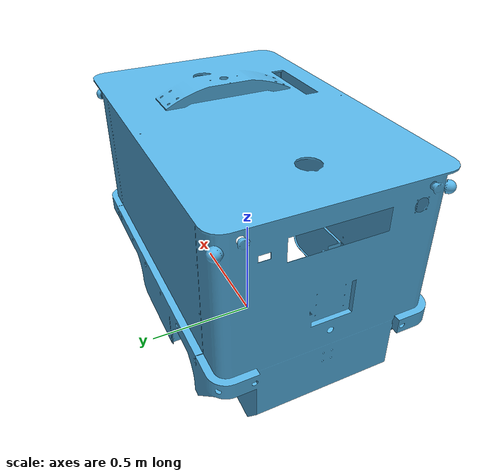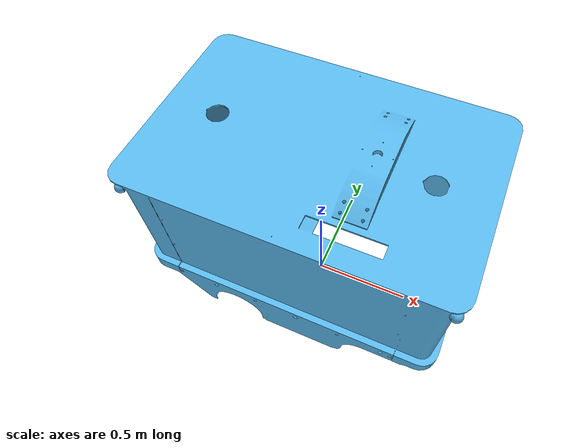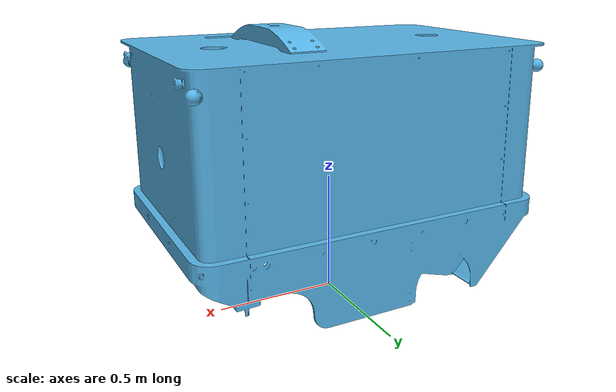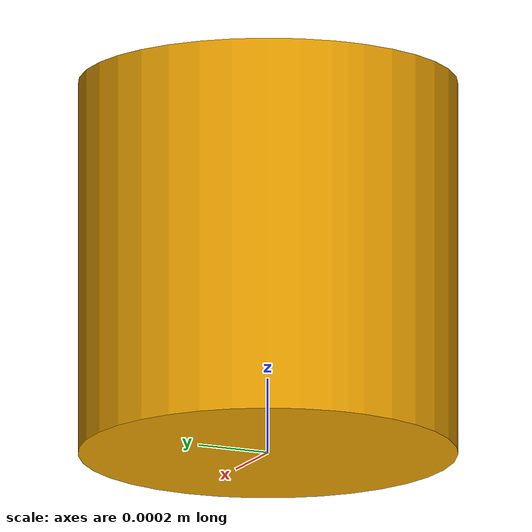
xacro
<?xml version="1.0" encoding="utf-8"?>
<robot xmlns:xacro="http://www.ros.org/wiki/xacro">
    <link name="base_footprint">
        <visual>
            <origin xyz="0 0 0" rpy="0 0 0" />
            <geometry>
                <mesh filename="package://cleaningrobot_description/meshes/base_footprint.STL" />
            </geometry>
            <xacro:color_material color="yellow"/>
        </visual>
        <collision>
            <origin xyz="0 0 0" rpy="0 0 0" />
            <geometry>
                <mesh filename="package://cleaningrobot_description/meshes/base_footprint.STL" />
            </geometry>
        </collision>
    </link>
    <link name="base_link">
        <inertial>
            <origin xyz="0 0 0.2541" rpy="0 0 0" />
            <mass value="24.9682" />
            <inertia ixx="1.4912" ixy="-0.0134" ixz="0.0072" iyy="2.6163" iyz="-0.0002" izz="3.5498" />
        </inertial>
        <visual>
            <origin xyz="0 0 0" rpy="0 0 0" />
            <geometry>
                <mesh filename="package://cleaningrobot_description/meshes/base_link.STL" />
            </geometry>
            <xacro:color_material color="white"/>

        </visual>
        <collision>
            <origin xyz="0 0 0" rpy="0 0 0" />
            <geometry>
                <mesh filename="package://cleaningrobot_description/meshes/base_link.STL" />
            </geometry>
        </collision>
    </link>
    <joint name="base_footprint2base_link" type="fixed">
        <origin xyz="0 0 0.53363" rpy="0 0 0" />
        <parent link="base_footprint" />
        <child link="base_link" />
        <axis xyz="0 0 0" />
    </joint>

    <!-- ultra sonar -->

    <link name="sonar1"></link>
  <joint
    name="baselink2sonar1"
    type="fixed">
    <origin
      xyz="0.7315 -0.156 -0.13812"
      rpy="-1.5708 0 -1.5708" />
    <parent
      link="base_link" />
    <child
      link="sonar1" />
    <axis
      xyz="0 0 0" />
  </joint>
  <link
    name="sonar2">
  </link>
  <joint
    name="baselink2sonar2"
    type="fixed">
    <origin
      xyz="0.489 -0.4765 -0.13812"
      rpy="-1.5708 0 3.1416" />
    <parent
      link="base_link" />
    <child
      link="sonar2" />
    <axis
      xyz="0 0 0" />
  </joint>
  <link
    name="sonar3">
  </link>
  <joint
    name="baselink_sonar3"
    type="fixed">
    <origin
      xyz="0.069 -0.4765 -0.13812"
      rpy="-1.5708 0 3.1416" />
    <parent
      link="base_link" />
    <child
      link="sonar3" />
    <axis
      xyz="0 0 0" />
  </joint>
  <link
    name="sonar4">
  </link>
  <joint
    name="baselink2sonar4"
    type="fixed">
    <origin
      xyz="-0.351 -0.4765 -0.13812"
      rpy="-1.5708 0 3.1416" />
    <parent
      link="base_link" />
    <child
      link="sonar4" />
    <axis
      xyz="0 0 0" />
  </joint>
  <link
    name="sonar5">
  </link>
  <joint
    name="baselink2sonar5"
    type="fixed">
    <origin
      xyz="-0.7315 -0.3225 -0.13812"
      rpy="-1.5708 0 1.5708" />
    <parent
      link="base_link" />
    <child
      link="sonar5" />
    <axis
      xyz="0 0 0" />
  </joint>
  <link
    name="sonar6">
  </link>
  <joint
    name="baselink2sonar6"
    type="fixed">
    <origin
      xyz="-0.7315 0.3225 -0.13812"
      rpy="-1.5708 0 1.5708" />
    <parent
      link="base_link" />
    <child
      link="sonar6" />
    <axis
      xyz="0 0 0" />
  </joint>
  <link
    name="sonar7">
  </link>
  <joint
    name="baselink2sonar7"
    type="fixed">
    <origin
      xyz="-0.351 0.4765 -0.13812"
      rpy="-1.5708 0 0" />
    <parent
      link="base_link" />
    <child
      link="sonar7" />
    <axis
      xyz="0 0 0" />
  </joint>
  <link
    name="sonar8">
  </link>
  <joint
    name="baselink2sonar8"
    type="fixed">
    <origin
      xyz="0.069 0.4765 -0.13812"
      rpy="-1.5708 0 0" />
    <parent
      link="base_link" />
    <child
      link="sonar8" />
    <axis
      xyz="0 0 0" />
  </joint>
  <link
    name="sonar9">
  </link>
  <joint
    name="baselink2sonar9"
    type="fixed">
    <origin
      xyz="0.489 0.4765 -0.13812"
      rpy="-1.5708 0 0" />
    <parent
      link="base_link" />
    <child
      link="sonar9" />
    <axis
      xyz="0 0 0" />
  </joint>
  <link
    name="sonar10">
  </link>
  <joint
    name="baselink2sonar10"
    type="fixed">
    <origin
      xyz="0.7315 0.156 -0.13812"
      rpy="-1.5708 0 -1.5708" />
    <parent
      link="base_link" />
    <child
      link="sonar10" />
    <axis
      xyz="0 0 0" />
  </joint>
    <!-- ultra sonar -->

    <gazebo>
        <plugin name="p3d_base_controller" filename="libgazebo_ros_p3d.so">
            <alwaysOn>true</alwaysOn>
            <updateRate>50.0</updateRate>
            <bodyName>base_footprint</bodyName>
            <topicName>odom_basefootprint</topicName>
            <gaussianNoise>0.0</gaussianNoise>
            <frameName>world</frameName>
            <xyzOffsets>0 0 0</xyzOffsets>
            <rpyOffsets>0 0 0</rpyOffsets>
        </plugin>
    </gazebo>

</robot>
